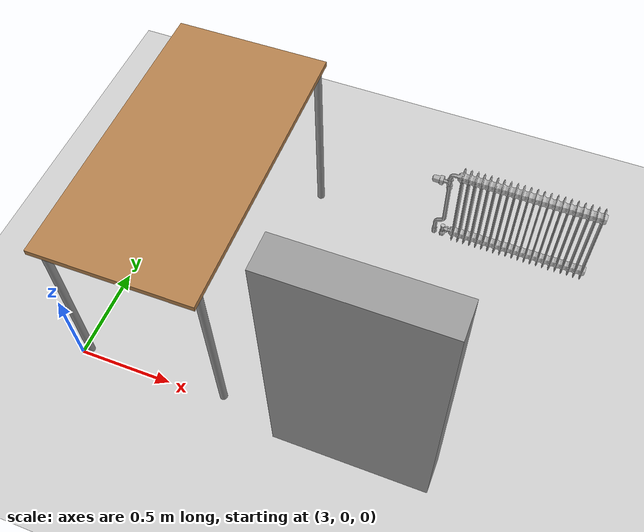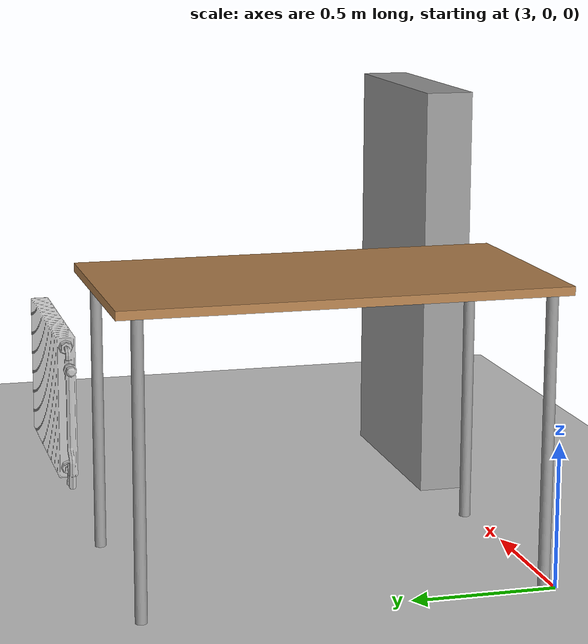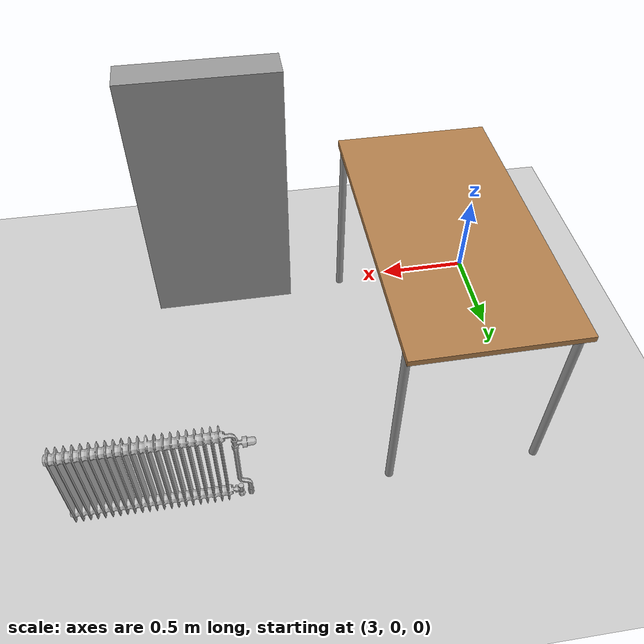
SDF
<sdf version="1.7">
 <world name="default">
  <model name="ground_plane">
   <static>1</static>
   <link name="link">
    <collision name="collision">
     <geometry><plane><normal>0 0 1</normal><size>100 100</size></plane></geometry>
     <surface>
      <contact><collide_bitmask>65535</collide_bitmask></contact>
      <friction><ode><mu>100</mu><mu2>50</mu2></ode></friction>
     </surface>
    </collision>
    <visual name="visual">
     <cast_shadows>0</cast_shadows>
     <geometry><plane><normal>0 0 1</normal><size>100 100</size></plane></geometry>
     <material>
      <script><uri>file://media/materials/scripts/gazebo.material</uri><name>Gazebo/Grey</name></script>
     </material>
    </visual>
   </link>
  </model>
  <model name="table">
   <static>1</static>
   <link name="link">
    <collision name="surface">
     <pose>0 0 1 0 -0 0</pose>
     <geometry><box><size>1.5 0.8 0.03</size></box></geometry>
     <surface><friction><ode><mu>0.6</mu><mu2>0.6</mu2></ode></friction></surface>
    </collision>
    <visual name="visual1">
     <pose>0 0 1 0 -0 0</pose>
     <geometry><box><size>1.5 0.8 0.03</size></box></geometry>
     <material>
      <script><uri>file://media/materials/scripts/gazebo.material</uri><name>Gazebo/Wood</name></script>
     </material>
    </visual>
    <collision name="front_left_leg">
     <pose>0.68 0.38 0.5 0 -0 0</pose>
     <geometry><cylinder><radius>0.02</radius><length>1</length></cylinder></geometry>
    </collision>
    <visual name="front_left_leg">
     <pose>0.68 0.38 0.5 0 -0 0</pose>
     <geometry><cylinder><radius>0.02</radius><length>1</length></cylinder></geometry>
     <material>
      <script><uri>file://media/materials/scripts/gazebo.material</uri><name>Gazebo/Grey</name></script>
     </material>
    </visual>
    <collision name="front_right_leg">
     <pose>0.68 -0.38 0.5 0 -0 0</pose>
     <geometry><cylinder><radius>0.02</radius><length>1</length></cylinder></geometry>
    </collision>
    <visual name="front_right_leg">
     <pose>0.68 -0.38 0.5 0 -0 0</pose>
     <geometry><cylinder><radius>0.02</radius><length>1</length></cylinder></geometry>
     <material>
      <script><uri>file://media/materials/scripts/gazebo.material</uri><name>Gazebo/Grey</name></script>
     </material>
    </visual>
    <collision name="back_right_leg">
     <pose>-0.68 -0.38 0.5 0 -0 0</pose>
     <geometry><cylinder><radius>0.02</radius><length>1</length></cylinder></geometry>
    </collision>
    <visual name="back_right_leg">
     <pose>-0.68 -0.38 0.5 0 -0 0</pose>
     <geometry><cylinder><radius>0.02</radius><length>1</length></cylinder></geometry>
     <material>
      <script><uri>file://media/materials/scripts/gazebo.material</uri><name>Gazebo/Grey</name></script>
     </material>
    </visual>
    <collision name="back_left_leg">
     <pose>-0.68 0.38 0.5 0 -0 0</pose>
     <geometry><cylinder><radius>0.02</radius><length>1</length></cylinder></geometry>
    </collision>
    <visual name="back_left_leg">
     <pose>-0.68 0.38 0.5 0 -0 0</pose>
     <geometry><cylinder><radius>0.02</radius><length>1</length></cylinder></geometry>
     <material>
      <script><uri>file://media/materials/scripts/gazebo.material</uri><name>Gazebo/Grey</name></script>
     </material>
    </visual>
   </link>
   <pose>3.40831 0.709706 0 0 0 -1.56489</pose>
  </model>
  <model name="CastIronRadiator_1">
   <link name="link">
    <inertial>
     <inertia>
      <ixx>8.794</ixx>
      <ixy>-6.04e-06</ixy>
      <ixz>-0.00027907</ixz>
      <iyy>6.32668</iyy>
      <iyz>-3.26e-06</iyz>
      <izz>3.17141</izz>
     </inertia>
     <mass>145.789</mass>
    </inertial>
    <visual name="radiator_visual">
     <geometry>
      <mesh>
       <uri>https://fuel.ignitionrobotics.org/1.0/alexssom/models/cast iron radiator/1/files/meshes/radiator.dae</uri>
      </mesh>
     </geometry>
     <plugin name="ignition::gazebo::systems::Thermal" filename="ignition-gazebo-thermal-system">
      <temperature>325.0</temperature>
     </plugin>
     <material><shader type="pixel"/></material>
    </visual>
    <collision name="radiator_collision">
     <geometry>
      <mesh>
       <uri>/home/johnerzz/.ignition/fuel/fuel.ignitionrobotics.org/alexssom/models/cast iron radiator/1/meshes/collision.stl</uri>
       <scale>1 1 1</scale>
      </mesh>
     </geometry>
     <surface>
      <friction>
       <ode><mu>1</mu><mu2>1</mu2><fdir1>0 0 0</fdir1><slip1>0</slip1><slip2>0</slip2></ode>
       <torsional>
        <coefficient>1</coefficient>
        <patch_radius>0</patch_radius>
        <surface_radius>0</surface_radius>
        <use_patch_radius>1</use_patch_radius>
        <ode><slip>0</slip></ode>
       </torsional>
      </friction>
      <bounce><restitution_coefficient>0</restitution_coefficient><threshold>1e+06</threshold></bounce>
      <contact>
       <collide_without_contact>0</collide_without_contact>
       <collide_without_contact_bitmask>1</collide_without_contact_bitmask>
       <collide_bitmask>1</collide_bitmask>
       <ode>
        <soft_cfm>0</soft_cfm>
        <soft_erp>0.2</soft_erp>
        <kp>1e+13</kp>
        <kd>1</kd>
        <max_vel>0.01</max_vel>
        <min_depth>0</min_depth>
       </ode>
       <bullet>
        <split_impulse>1</split_impulse>
        <split_impulse_penetration_threshold>-0.01</split_impulse_penetration_threshold>
        <soft_cfm>0</soft_cfm>
        <soft_erp>0.2</soft_erp>
        <kp>1e+13</kp>
        <kd>1</kd>
       </bullet>
      </contact>
     </surface>
    </collision>
   </link>
   <static>1</static>
   <pose>4.95909 1.3866 0 0 -0 0</pose>
  </model>
  <model name="unit_box_clone_clone">
   <link name="link">
    <inertial>
     <mass>1</mass>
     <inertia>
      <ixx>0.166667</ixx>
      <ixy>0</ixy>
      <ixz>0</ixz>
      <iyy>0.166667</iyy>
      <iyz>0</iyz>
      <izz>0.166667</izz>
     </inertia>
    </inertial>
    <visual name="visual">
     <geometry><box><size>0.795223 0.175192 1.52479</size></box></geometry>
     <material>
      <script><name>Gazebo/Grey</name><uri>file://media/materials/scripts/gazebo.material</uri></script>
      <shader type="pixel"/>
     </material>
    </visual>
    <collision name="collision">
     <geometry><box><size>0.795223 0.175192 1.52479</size></box></geometry>
     <surface>
      <friction>
       <ode><mu>1</mu><mu2>1</mu2><fdir1>0 0 0</fdir1><slip1>0</slip1><slip2>0</slip2></ode>
       <torsional>
        <coefficient>1</coefficient>
        <patch_radius>0</patch_radius>
        <surface_radius>0</surface_radius>
        <use_patch_radius>1</use_patch_radius>
        <ode><slip>0</slip></ode>
       </torsional>
      </friction>
      <bounce><restitution_coefficient>0</restitution_coefficient><threshold>1e+06</threshold></bounce>
      <contact>
       <collide_without_contact>0</collide_without_contact>
       <collide_without_contact_bitmask>1</collide_without_contact_bitmask>
       <collide_bitmask>1</collide_bitmask>
       <ode>
        <soft_cfm>0</soft_cfm>
        <soft_erp>0.2</soft_erp>
        <kp>1e+13</kp>
        <kd>1</kd>
        <max_vel>0.01</max_vel>
        <min_depth>0</min_depth>
       </ode>
       <bullet>
        <split_impulse>1</split_impulse>
        <split_impulse_penetration_threshold>-0.01</split_impulse_penetration_threshold>
        <soft_cfm>0</soft_cfm>
        <soft_erp>0.2</soft_erp>
        <kp>1e+13</kp>
        <kd>1</kd>
       </bullet>
      </contact>
     </surface>
    </collision>
   </link>
   <static>1</static>
   <pose>4.50719 0.00915 0.764379 0 -0 0</pose>
  </model>
 </world>
</sdf>
